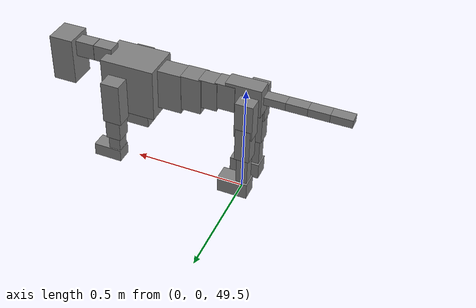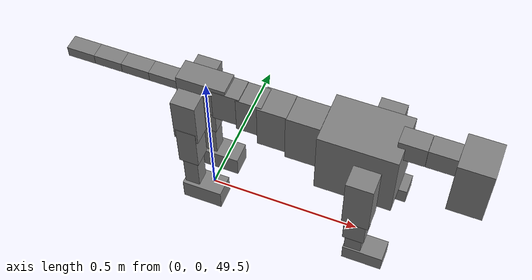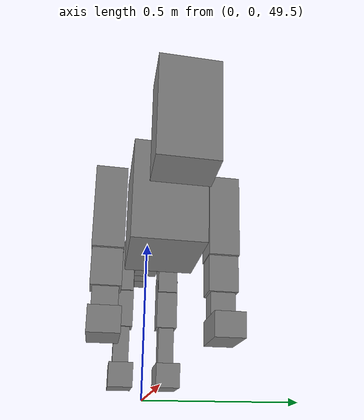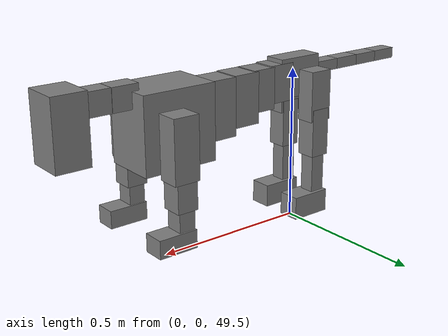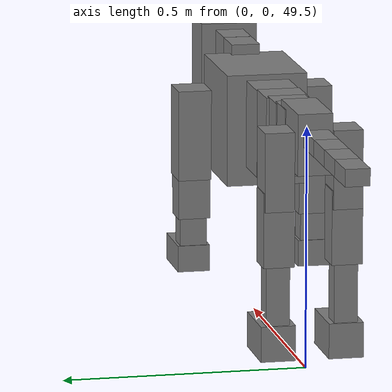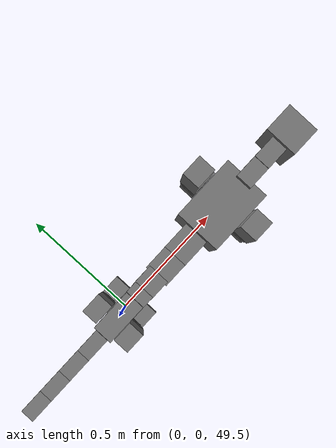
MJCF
<mujoco model="dog">

    <default>
        <joint armature="0.02" stiffness="1" damping="0.2" limited="true"/>
        <geom condim="3" friction="1 0.05 0.05" margin="0.01"/>
        <motor ctrllimited="true" ctrlrange="-1.0 1.0" forcelimited="true" gear="50"/>
    </default>

    <compiler inertiafromgeom="true" angle="radian"/>

    <option timestep="0.016" iterations="50" tolerance="1e-10" solver="Newton" jacobian="dense" cone="pyramidal"/>

    <size nconmax="20000" njmax="60000" nstack="5000000"/>
    <visual>
        <map force="0.1" zfar="30"/>
        <rgba haze="0.15 0.25 0.35 1"/>
        <quality shadowsize="2048"/>
        <global offwidth="800" offheight="800"/>
    </visual>

    <asset>
        <texture type="skybox" builtin="gradient" rgb1="0.3 0.5 0.7" rgb2="0 0 0" width="512" height="512"/>
        <texture name="texplane" type="2d" builtin="checker" rgb1=".2 .3 .4" rgb2=".1 0.15 0.2" width="512" height="512"
                 mark="cross" markrgb=".8 .8 .8"/>
        <texture name="texgeom" type="cube" builtin="flat" mark="cross" width="127" height="1278" rgb1="0.8 0.6 0.4"
                 rgb2="0.8 0.6 0.4" markrgb="1 1 1" random="0.01"/>

        <material name="matplane" reflectance="0.3" texture="texplane" texrepeat="1 1" texuniform="true"/>
        <material name="matgeom" texture="texgeom" texuniform="true" rgba="0.8 0.6 .4 1"/>
    </asset>

    <worldbody>
        <geom name="floor" pos="0 0 0" size="0 0 .25" type="plane" material="matplane" condim="3"/>

        <light directional="false" diffuse=".2 .2 .2" specular="0 0 0" pos="0 0 5" dir="0 0 -1" castshadow="false"/>
        <light mode="targetbodycom" target="torso" directional="false" diffuse=".8 .8 .8" specular="0.3 0.3 0.3"
               pos="0 0 4.0" dir="0 0 -1"/>

        <body name="root" pos="0 0 50">
            <freejoint name="root_1"/>
            <geom type="box" pos="0 0 -0.02" size="0.0774  0.0358  0.063" density="2030"/>

            <body name="spine1" pos="0.054 0 0">
                <joint name="spine1_y" axis="0 1 0" range="0 0.7" limited="true"/>
                <geom type="box" pos="0.02375 0 -0.03" size="0.04375  0.0375  0.05985" density="2030"/>

                <body name="spine2" pos="0.0612 0 0">
                    <joint name="spine2_y" axis="0 1 0" range="-0.15 0.15" limited="true"/>
                    <geom type="box" pos="0.03555  0  -0.04" size="0.04055  0.039  0.06615" density="2030"/>

                    <body name="spine3" pos="0.0730 0 0">
                        <joint name="spine3_y" axis="0 1 0" range="-0.15 0.15" limited="true"/>
                        <geom type="box" pos="0.03555  0  -0.057" size="0.04555  0.0445  0.081" density="2030"/>

                        <body name="spine4" pos="0.0780 0 0">
                            <joint name="spine4_y" axis="0 1 0" range="-0.15 0.15" limited="true"/>
                            <geom type="box" pos="0.05265  0  -0.07" size="0.05265  0.045  0.09135" density="2030"/>

                            <body name="torso" pos="0.1082 0 0">
                                <joint name="torso_y" axis="0 1 0" range="-0.15 0.15" limited="true"/>
                                <geom type="box" pos="0.11925  0  -0.085" size="0.11925  0.085  0.11745"
                                      density="2030"/>

                                <body name="neck1" pos="0.2160  0   0.0180">
                                    <joint name="neck1_y" axis="0 1 0" range="-1.2  -1" limited="true"/>
                                    <geom type="box" pos="0.0423  0  0" size="0.0423  0.03  0.036" density="2325"/>

                                    <body name="neck2" pos="0.0853  0  0">
                                        <joint name="neck2_y" axis="0 1 0" range="0.1  0" limited="true"/>
                                        <geom type="box" pos="0.0423  0  0" size="0.0423  0.03  0.036" density="2325"/>

                                        <body name="head" pos="0.0853  0  0">
                                            <joint name="head_y" axis="0 1 0" range="-0.3  -0.2" limited="true"/>
                                            <geom type="box" pos="0.0531  0  -0.055" size="0.0531  0.06  0.1044"
                                                  density="4030"/>

                                        </body>
                                    </body>
                                </body>

                                <body name="front_shoulder" pos="0.156  0   -0.0480">
                                    <joint name="front_shoulder_y" axis="0 1 0" range="-1 1.5" limited="true"/>
                                    <geom type="box" pos="0 0.13 -0.0692" size="0.0411  0.0351  0.0958" density="1158"/>
                                    <geom type="box" pos="0 -0.13 -0.0692" size="0.0411  0.0351  0.0958"
                                          density="1158"/>

                                    <body name="front_elbow" pos="0  0  -0.1384">
                                        <joint name="front_elbow_y" axis="0 1 0" range="-2 0" limited="true"/>
                                        <geom type="box" pos="0 0.13 -0.0557" size="0.0331  0.0338  0.0557"
                                              density="1081"/>
                                        <geom type="box" pos="0 -0.13 -0.0557" size="0.0331  0.0338  0.0557"
                                              density="1081"/>

                                        <body name="front_wrist" pos="0  0  -0.1114">
                                            <joint name="front_wrist_y" axis="0 1 0" range="-0.2 0" limited="true"/>
                                            <geom type="box" pos="0 0.13 -0.0370" size="0.0258  0.0287  0.0501"
                                                  density="1664"/>
                                            <geom type="box" pos="0 -0.13 -0.0370" size="0.0258  0.0287  0.0501"
                                                  density="1664"/>

                                            <body name="front_finger_end" pos="0  0  -0.0739">
                                                <joint name="front_finger_y" axis="0 1 0" range="-0.4 1"
                                                       limited="true"/>
                                                <geom type="box" pos="0.0341  0.13  -0.0132"
                                                      size="0.0625  0.0341  0.0282" density="1515"/>
                                                <geom type="box" pos="0.0341  -0.13  -0.0132"
                                                      size="0.0625  0.0341  0.0282" density="1515"/>

                                            </body>

                                        </body>
                                    </body>
                                </body>

                            </body>
                        </body>
                    </body>
                </body>
            </body>

            <body name="back_hip" pos="-0.03 0 -0.018">
                <joint name="back_hip_y" axis="0 1 0" range="-1.5 0.3" limited="true"/>
                <geom type="box" pos="0 0.07 -0.0581" size="0.0385  0.0302  0.0809" density="1154"/>
                <geom type="box" pos="0 -0.07 -0.0581" size="0.0385  0.0302  0.0809" density="1154"/>

                <body name="back_knee" pos="0  0  -0.1162">
                    <joint name="back_knee_y" axis="0 1 0" range="0 2.8" limited="true"/>
                    <geom type="box" pos="0 0.07 -0.0615" size="0.0323  0.0318  0.0771" density="1227"/>
                    <geom type="box" pos="0 -0.07 -0.0615" size="0.0323  0.0318  0.0771" density="1227"/>

                    <body name="back_ankle" pos="0  0  -0.1230">
                        <joint name="back_ankle_y" axis="0 1 0" range="-2.2 0" limited="true"/>
                        <geom type="box" pos="0 0.07 -0.0761" size="0.0243  0.0243  0.0873" density="1284"/>
                        <geom type="box" pos="0 -0.07 -0.0761" size="0.0243  0.0243  0.0873" density="1284"/>

                        <body name="back_toe_end" pos="0  0  -0.1521">
                            <joint name="back_toe_y" axis="0 1 0" range="-0.4 1" limited="true"/>
                            <geom type="box" pos="0.0358  0.07  -0.0215" size="0.0657  0.0358  0.0365" density="1515"/>
                            <geom type="box" pos="0.0358  -0.07  -0.0215" size="0.0657  0.0358  0.0365" density="1515"/>

                        </body>
                    </body>
                </body>
            </body>

            <body name="tail1" pos="-0.074 0 -0.006">
                <joint name="tail1_y" axis="0 1 0" range="-0.2 0.2" limited="true"/>
                <geom type="box" pos="-0.0536  0  0" size="0.045  0.025  0.0175" density="1587"/>

                <body name="tail2" pos="-0.09 0 0">
                    <joint name="tail2_y" axis="0 1 0" range="-0.2 0.2" limited="true"/>
                    <geom type="box" pos="-0.0536  0  0" size="0.045  0.025  0.0175" density="1587"/>

                    <body name="tail3" pos="-0.09 0 0">
                        <joint name="tail3_y" axis="0 1 0" range="-0.2 0.2" limited="true"/>
                        <geom type="box" pos="-0.0536  0  0" size="0.045  0.025  0.0175" density="1587"/>

                        <body name="tail4" pos="-0.09 0 0">
                            <joint name="tail4_y" axis="0 1 0" range="-0.2 0.2" limited="true"/>
                            <geom type="box" pos="-0.0536  0  0" size="0.045  0.025  0.0175" density="1587"/>

                        </body>
                    </body>
                </body>
            </body>
        </body>
    </worldbody>

    <actuator>
        <motor joint="spine1_y" forcerange="-150 150     "/>
        <motor joint="spine2_y" forcerange="-150 150     "/>
        <motor joint="spine3_y" forcerange="-150 150     "/>
        <motor joint="spine4_y" forcerange="-150 150     "/>
        <motor joint="torso_y" forcerange="-150 150     "/>
        <motor joint="neck1_y" forcerange="-100 100       "/>
        <motor joint="neck2_y" forcerange="-100 100       "/>
        <motor joint="head_y" forcerange="-150 150       "/>
        <motor joint="front_shoulder_y" forcerange="-135.56 198.55"/>
        <motor joint="front_elbow_y" forcerange="-168.45 177.47"/>
        <motor joint="front_wrist_y" forcerange="-82.67 147.10"/>
        <motor joint="front_finger_y" forcerange="-77.06 64.74"/>
        <motor joint="back_hip_y" forcerange="-203.19 398.99"/>
        <motor joint="back_knee_y" forcerange="-360.34 302.13"/>
        <motor joint="back_angle_y" forcerange="-128.55 160.60"/>
        <motor joint="back_toe_y" forcerange="-117.29 89.45"/>
        <motor joint="tail1_y" forcerange="-50 50     "/>
        <motor joint="tail2_y" forcerange="-50 50     "/>
        <motor joint="tail3_y" forcerange="-50 50     "/>
        <motor joint="tail4_y" forcerange="-50 50     "/>
    </actuator>
</mujoco>
